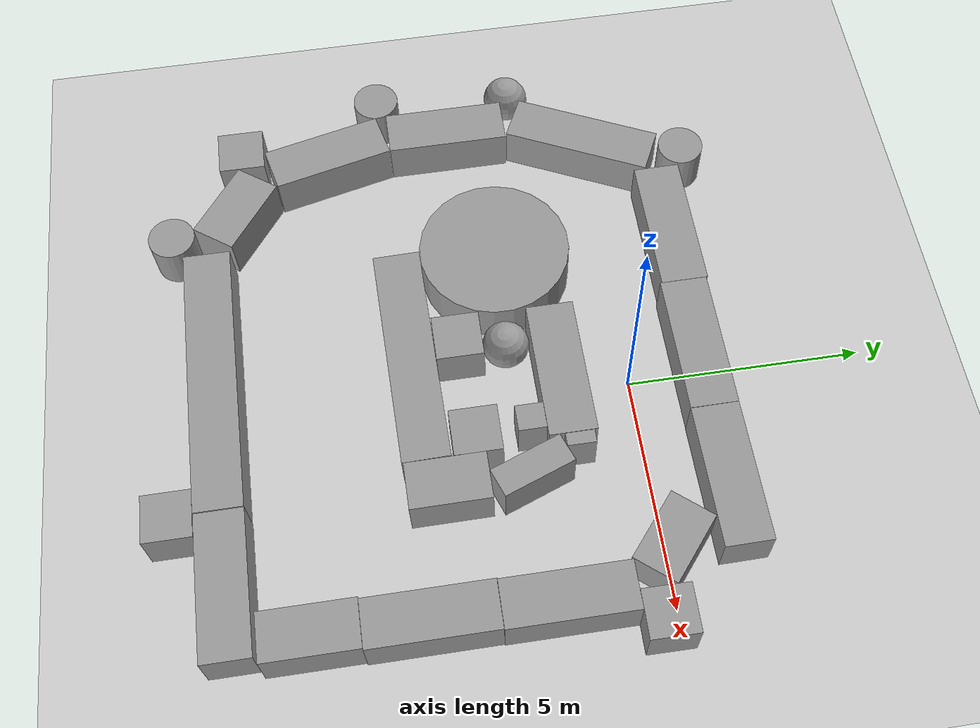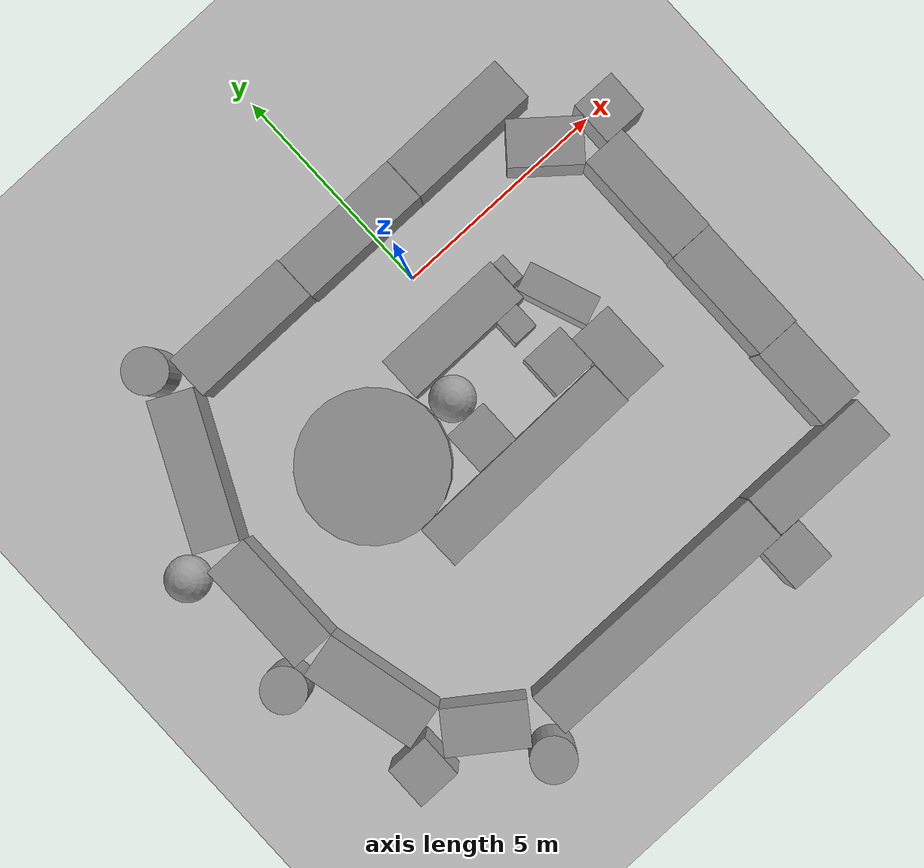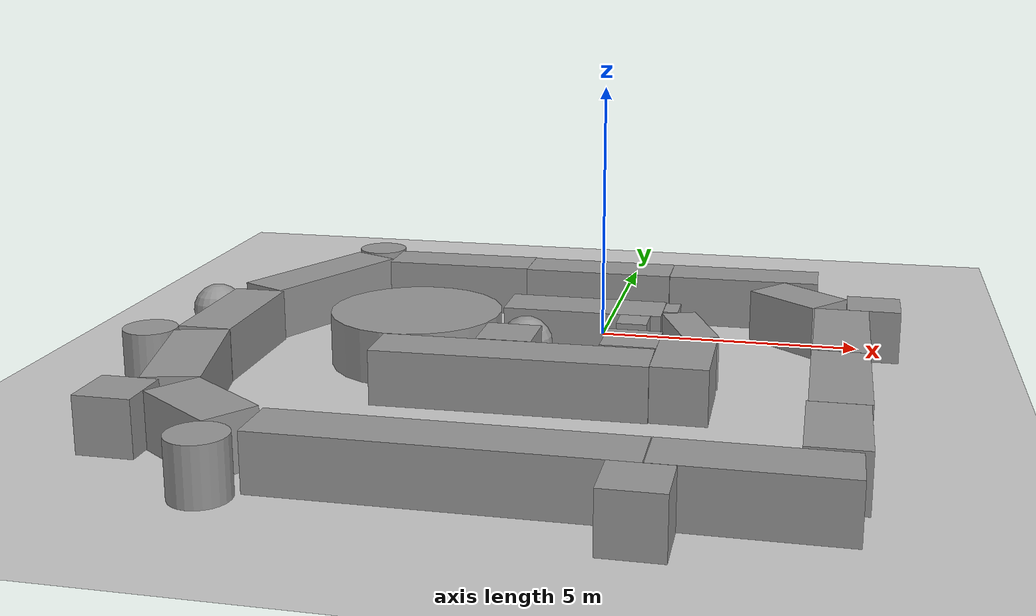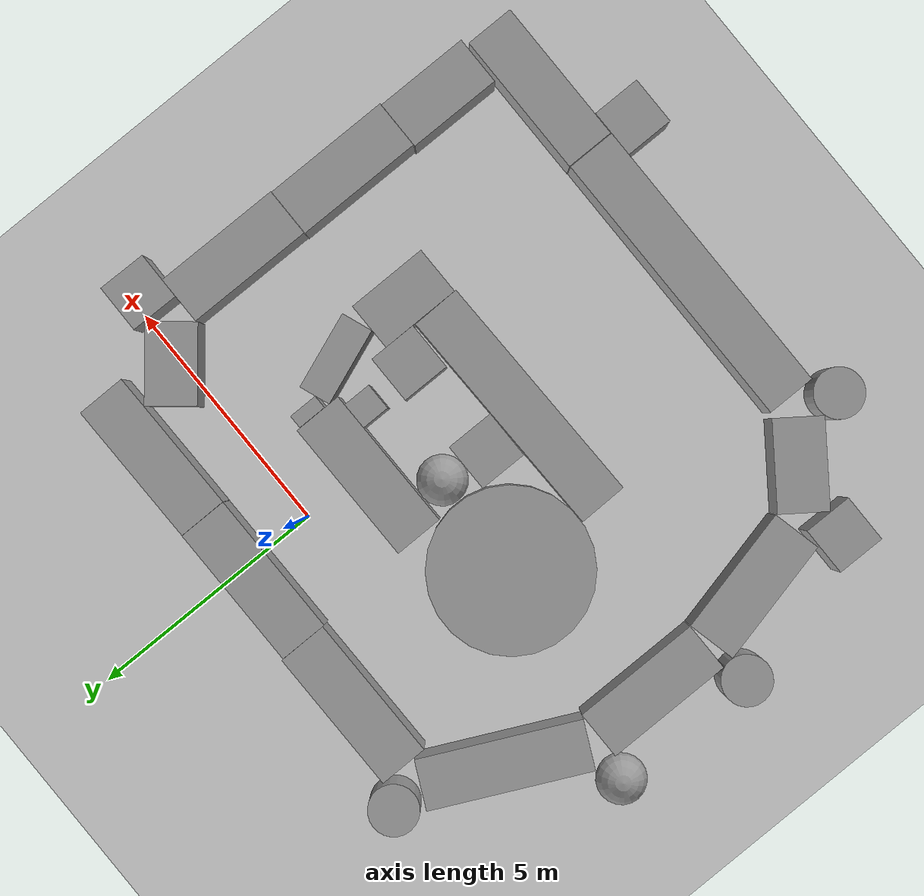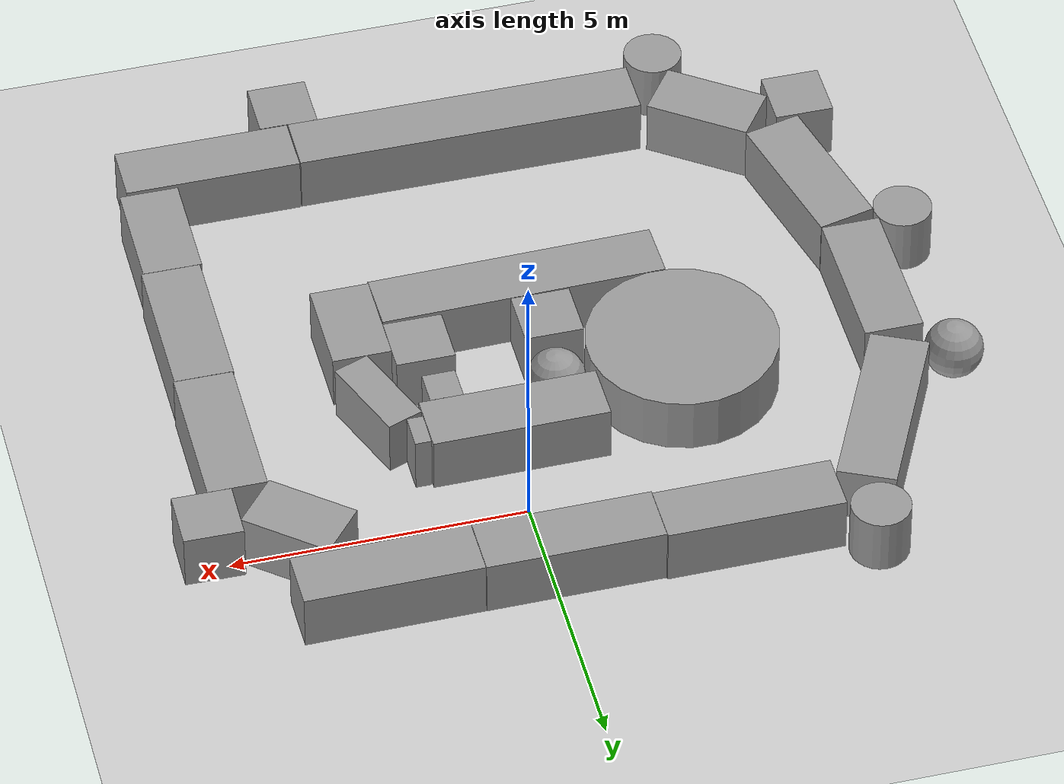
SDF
<sdf version="1.7">
 <world name="default">
  <light name="sun" type="directional">
   <pose>0 0 10 0 -0 0</pose>
   <diffuse>0.8 0.8 0.8 1</diffuse>
   <specular>0.2 0.2 0.2 1</specular>
   <attenuation>
    <range>1000</range>
    <constant>0.9</constant>
    <linear>0.01</linear>
    <quadratic>0.001</quadratic>
   </attenuation>
   <direction>-0.5 0.1 -0.9</direction>
   <spot><inner_angle>0</inner_angle><outer_angle>0</outer_angle><falloff>0</falloff></spot>
  </light>
  <model name="ground_plane">
   <static>1</static>
   <link name="link">
    <collision name="collision">
     <geometry><plane><normal>0 0 1</normal><size>100 100</size></plane></geometry>
     <surface><friction><ode><mu>100</mu><mu2>50</mu2></ode></friction></surface>
    </collision>
    <visual name="visual">
     <cast_shadows>0</cast_shadows>
     <geometry><plane><normal>0 0 1</normal><size>100 100</size></plane></geometry>
     <material>
      <script><uri>file://media/materials/scripts/gazebo.material</uri><name>Gazebo/Grey</name></script>
     </material>
    </visual>
   </link>
  </model>
  <gravity>0 0 -9.8</gravity>
  <magnetic_field>6e-06 2.3e-05 -4.2e-05</magnetic_field>
  <atmosphere type="adiabatic"/>
  <physics type="ode">
   <max_step_size>0.001</max_step_size>
   <real_time_factor>1</real_time_factor>
   <real_time_update_rate>1000</real_time_update_rate>
  </physics>
  <scene><ambient>0.4 0.4 0.4 1</ambient><background>0.7 0.7 0.7 1</background><shadows>1</shadows></scene>
  <spherical_coordinates>
   <surface_model>EARTH_WGS84</surface_model>
   <latitude_deg>0</latitude_deg>
   <longitude_deg>0</longitude_deg>
   <elevation>0</elevation>
   <heading_deg>0</heading_deg>
  </spherical_coordinates>
  <model name="unit_box">
   <pose>-0.124372 -1.44495 0.5 0 -0 0.004829</pose>
   <link name="link">
    <inertial>
     <mass>1</mass>
     <inertia>
      <ixx>0.166667</ixx>
      <ixy>0</ixy>
      <ixz>0</ixz>
      <iyy>0.166667</iyy>
      <iyz>0</iyz>
      <izz>0.166667</izz>
     </inertia>
    </inertial>
    <collision name="collision"><geometry><box><size>2.99679 1 1</size></box></geometry></collision>
    <visual name="visual">
     <geometry><box><size>2.99679 1 1</size></box></geometry>
     <material>
      <script><name>Gazebo/Grey</name><uri>file://media/materials/scripts/gazebo.material</uri></script>
     </material>
    </visual>
   </link>
  </model>
  <model name="unit_box_0">
   <pose>1.95773 -2.35909 0.5 0 0 -1.21042</pose>
   <link name="link">
    <inertial>
     <mass>1</mass>
     <inertia>
      <ixx>0.166667</ixx>
      <ixy>0</ixy>
      <ixz>0</ixz>
      <iyy>0.166667</iyy>
      <iyz>0</iyz>
      <izz>0.166667</izz>
     </inertia>
    </inertial>
    <collision name="collision"><geometry><box><size>1.59879 0.641535 1</size></box></geometry></collision>
    <visual name="visual">
     <geometry><box><size>1.59879 0.641535 1</size></box></geometry>
     <material>
      <script><name>Gazebo/Grey</name><uri>file://media/materials/scripts/gazebo.material</uri></script>
     </material>
    </visual>
   </link>
  </model>
  <model name="unit_box_1">
   <pose>4.67137 -2.08117 0.499914 6.5e-05 -0 -0.002604</pose>
   <link name="link">
    <inertial>
     <mass>1</mass>
     <inertia>
      <ixx>0.166667</ixx>
      <ixy>0</ixy>
      <ixz>0</ixz>
      <iyy>0.166667</iyy>
      <iyz>0</iyz>
      <izz>0.166667</izz>
     </inertia>
    </inertial>
    <collision name="collision"><geometry><box><size>1 2.63405 1</size></box></geometry></collision>
    <visual name="visual">
     <geometry><box><size>1 2.63405 1</size></box></geometry>
     <material>
      <script><name>Gazebo/Grey</name><uri>file://media/materials/scripts/gazebo.material</uri></script>
     </material>
    </visual>
   </link>
  </model>
  <model name="unit_box_2">
   <pose>-5.9755 0.01134 0.499995 -3e-06 -0 -0.448899</pose>
   <link name="link">
    <inertial>
     <mass>1</mass>
     <inertia>
      <ixx>0.166667</ixx>
      <ixy>0</ixy>
      <ixz>0</ixz>
      <iyy>0.166667</iyy>
      <iyz>0</iyz>
      <izz>0.166667</izz>
     </inertia>
    </inertial>
    <collision name="collision"><geometry><box><size>1 3.27343 1</size></box></geometry></collision>
    <visual name="visual">
     <geometry><box><size>1 3.27343 1</size></box></geometry>
     <material>
      <script><name>Gazebo/Grey</name><uri>file://media/materials/scripts/gazebo.material</uri></script>
     </material>
    </visual>
   </link>
  </model>
  <model name="unit_box_clone">
   <pose>-0.29151 1.48613 0.5 0 -0 0.003307</pose>
   <link name="link">
    <inertial>
     <mass>1</mass>
     <inertia>
      <ixx>0.166667</ixx>
      <ixy>0</ixy>
      <ixz>0</ixz>
      <iyy>0.166667</iyy>
      <iyz>0</iyz>
      <izz>0.166667</izz>
     </inertia>
    </inertial>
    <collision name="collision"><geometry><box><size>2.99679 1 1</size></box></geometry></collision>
    <visual name="visual">
     <geometry><box><size>2.99679 1 1</size></box></geometry>
     <material>
      <script><name>Gazebo/Grey</name><uri>file://media/materials/scripts/gazebo.material</uri></script>
     </material>
    </visual>
   </link>
  </model>
  <model name="unit_box_clone_0">
   <pose>2.71039 1.49832 0.499826 -0 -0.000116 0.007487</pose>
   <link name="link">
    <inertial>
     <mass>1</mass>
     <inertia>
      <ixx>0.166667</ixx>
      <ixy>0</ixy>
      <ixz>0</ixz>
      <iyy>0.166667</iyy>
      <iyz>0</iyz>
      <izz>0.166667</izz>
     </inertia>
    </inertial>
    <collision name="collision"><geometry><box><size>2.99679 1 1</size></box></geometry></collision>
    <visual name="visual">
     <geometry><box><size>2.99679 1 1</size></box></geometry>
     <material>
      <script><name>Gazebo/Grey</name><uri>file://media/materials/scripts/gazebo.material</uri></script>
     </material>
    </visual>
   </link>
  </model>
  <model name="unit_box_0_clone">
   <pose>3.84558 0.10203 0.5 0 0 -0.694161</pose>
   <link name="link">
    <inertial>
     <mass>1</mass>
     <inertia>
      <ixx>0.166667</ixx>
      <ixy>0</ixy>
      <ixz>0</ixz>
      <iyy>0.166667</iyy>
      <iyz>0</iyz>
      <izz>0.166667</izz>
     </inertia>
    </inertial>
    <collision name="collision"><geometry><box><size>1.59495 1 1</size></box></geometry></collision>
    <visual name="visual">
     <geometry><box><size>1.59495 1 1</size></box></geometry>
     <material>
      <script><name>Gazebo/Grey</name><uri>file://media/materials/scripts/gazebo.material</uri></script>
     </material>
    </visual>
   </link>
  </model>
  <model name="unit_box_1_clone">
   <pose>4.65008 -4.7189 0.499999 0 2e-06 -0.001201</pose>
   <link name="link">
    <inertial>
     <mass>1</mass>
     <inertia>
      <ixx>0.166667</ixx>
      <ixy>0</ixy>
      <ixz>0</ixz>
      <iyy>0.166667</iyy>
      <iyz>0</iyz>
      <izz>0.166667</izz>
     </inertia>
    </inertial>
    <collision name="collision"><geometry><box><size>1 2.63405 1</size></box></geometry></collision>
    <visual name="visual">
     <geometry><box><size>1 2.63405 1</size></box></geometry>
     <material>
      <script><name>Gazebo/Grey</name><uri>file://media/materials/scripts/gazebo.material</uri></script>
     </material>
    </visual>
   </link>
  </model>
  <model name="unit_box_1_clone_clone">
   <pose>2.0271 -4.05793 0.5 0 -0 0.003096</pose>
   <link name="link">
    <inertial>
     <mass>1</mass>
     <inertia>
      <ixx>0.166667</ixx>
      <ixy>0</ixy>
      <ixz>0</ixz>
      <iyy>0.166667</iyy>
      <iyz>0</iyz>
      <izz>0.166667</izz>
     </inertia>
    </inertial>
    <collision name="collision"><geometry><box><size>1 1.67048 1</size></box></geometry></collision>
    <visual name="visual">
     <geometry><box><size>1 1.67048 1</size></box></geometry>
     <material>
      <script><name>Gazebo/Grey</name><uri>file://media/materials/scripts/gazebo.material</uri></script>
     </material>
    </visual>
   </link>
  </model>
  <model name="unit_box_3">
   <pose>-5.12308 -7.87735 0.49999 0 1e-05 -0.626907</pose>
   <link name="link">
    <inertial>
     <mass>1</mass>
     <inertia>
      <ixx>0.166667</ixx>
      <ixy>0</ixy>
      <ixz>0</ixz>
      <iyy>0.166667</iyy>
      <iyz>0</iyz>
      <izz>0.166667</izz>
     </inertia>
    </inertial>
    <collision name="collision"><geometry><box><size>1.81067 1 1</size></box></geometry></collision>
    <visual name="visual">
     <geometry><box><size>1.81067 1 1</size></box></geometry>
     <material>
      <script><name>Gazebo/Grey</name><uri>file://media/materials/scripts/gazebo.material</uri></script>
     </material>
    </visual>
   </link>
  </model>
  <model name="unit_box_clone_1">
   <pose>3.47569 -8.55019 0.49732 0.000483 0.000993 -6.5e-05</pose>
   <link name="link">
    <inertial>
     <mass>1</mass>
     <inertia>
      <ixx>0.166667</ixx>
      <ixy>0</ixy>
      <ixz>0</ixz>
      <iyy>0.166667</iyy>
      <iyz>0</iyz>
      <izz>0.166667</izz>
     </inertia>
    </inertial>
    <collision name="collision"><geometry><box><size>2.99679 1 1</size></box></geometry></collision>
    <visual name="visual">
     <geometry><box><size>2.99679 1 1</size></box></geometry>
     <material>
      <script><name>Gazebo/Grey</name><uri>file://media/materials/scripts/gazebo.material</uri></script>
     </material>
    </visual>
   </link>
  </model>
  <model name="unit_box_clone_2">
   <pose>-1.01855 -8.55844 0.495311 0 -0.001573 0.000108</pose>
   <link name="link">
    <inertial>
     <mass>1</mass>
     <inertia>
      <ixx>0.166667</ixx>
      <ixy>0</ixy>
      <ixz>0</ixz>
      <iyy>0.166667</iyy>
      <iyz>0</iyz>
      <izz>0.166667</izz>
     </inertia>
    </inertial>
    <collision name="collision"><geometry><box><size>5.96262 1 1</size></box></geometry></collision>
    <visual name="visual">
     <geometry><box><size>5.96262 1 1</size></box></geometry>
     <material>
      <script><name>Gazebo/Grey</name><uri>file://media/materials/scripts/gazebo.material</uri></script>
     </material>
    </visual>
   </link>
  </model>
  <model name="unit_box_clone_2_clone">
   <pose>-0.914491 -4.47077 0.499941 1e-06 -0 0.017964</pose>
   <link name="link">
    <inertial>
     <mass>1</mass>
     <inertia>
      <ixx>0.166667</ixx>
      <ixy>0</ixy>
      <ixz>0</ixz>
      <iyy>0.166667</iyy>
      <iyz>0</iyz>
      <izz>0.166667</izz>
     </inertia>
    </inertial>
    <collision name="collision"><geometry><box><size>4.8707 1 1</size></box></geometry></collision>
    <visual name="visual">
     <geometry><box><size>4.8707 1 1</size></box></geometry>
     <material>
      <script><name>Gazebo/Grey</name><uri>file://media/materials/scripts/gazebo.material</uri></script>
     </material>
    </visual>
   </link>
  </model>
  <model name="unit_cylinder">
   <pose>-3.21355 -2.39177 0.499987 8e-06 -6e-06 -0.143871</pose>
   <link name="link">
    <inertial>
     <mass>1</mass>
     <inertia><ixx>0.145833</ixx><ixy>0</ixy><ixz>0</ixz><iyy>0.145833</iyy><iyz>0</iyz><izz>0.125</izz></inertia>
    </inertial>
    <collision name="collision">
     <geometry><cylinder><radius>1.61993</radius><length>1</length></cylinder></geometry>
    </collision>
    <visual name="visual">
     <geometry><cylinder><radius>1.61993</radius><length>1</length></cylinder></geometry>
     <material>
      <script><name>Gazebo/Grey</name><uri>file://media/materials/scripts/gazebo.material</uri></script>
     </material>
    </visual>
   </link>
  </model>
  <model name="unit_box_1_clone_clone_clone">
   <pose>4.61275 -7.00726 0.499995 -0 9e-06 -0.001985</pose>
   <link name="link">
    <inertial>
     <mass>1</mass>
     <inertia>
      <ixx>0.166667</ixx>
      <ixy>0</ixy>
      <ixz>0</ixz>
      <iyy>0.166667</iyy>
      <iyz>0</iyz>
      <izz>0.166667</izz>
     </inertia>
    </inertial>
    <collision name="collision"><geometry><box><size>1 1.93774 1</size></box></geometry></collision>
    <visual name="visual">
     <geometry><box><size>1 1.93774 1</size></box></geometry>
     <material>
      <script><name>Gazebo/Grey</name><uri>file://media/materials/scripts/gazebo.material</uri></script>
     </material>
    </visual>
   </link>
  </model>
  <model name="unit_box_1_clone_clone_0">
   <pose>-6.33915 -5.74834 0.5 0 -0 0.231492</pose>
   <link name="link">
    <inertial>
     <mass>1</mass>
     <inertia>
      <ixx>0.166667</ixx>
      <ixy>0</ixy>
      <ixz>0</ixz>
      <iyy>0.166667</iyy>
      <iyz>0</iyz>
      <izz>0.166667</izz>
     </inertia>
    </inertial>
    <collision name="collision"><geometry><box><size>1 2.63405 1</size></box></geometry></collision>
    <visual name="visual">
     <geometry><box><size>1 2.63405 1</size></box></geometry>
     <material>
      <script><name>Gazebo/Grey</name><uri>file://media/materials/scripts/gazebo.material</uri></script>
     </material>
    </visual>
   </link>
  </model>
  <model name="unit_box_1_clone_clone_1">
   <pose>-6.65738 -3.02372 0.499999 0 2e-06 0.000765</pose>
   <link name="link">
    <inertial>
     <mass>1</mass>
     <inertia>
      <ixx>0.166667</ixx>
      <ixy>0</ixy>
      <ixz>0</ixz>
      <iyy>0.166667</iyy>
      <iyz>0</iyz>
      <izz>0.166667</izz>
     </inertia>
    </inertial>
    <collision name="collision"><geometry><box><size>1 2.63405 1</size></box></geometry></collision>
    <visual name="visual">
     <geometry><box><size>1 2.63405 1</size></box></geometry>
     <material>
      <script><name>Gazebo/Grey</name><uri>file://media/materials/scripts/gazebo.material</uri></script>
     </material>
    </visual>
   </link>
  </model>
  <model name="unit_box_clone_clone">
   <pose>-3.29053 1.51015 0.499996 5e-06 1e-06 0.005382</pose>
   <link name="link">
    <inertial>
     <mass>1</mass>
     <inertia>
      <ixx>0.166667</ixx>
      <ixy>0</ixy>
      <ixz>0</ixz>
      <iyy>0.166667</iyy>
      <iyz>0</iyz>
      <izz>0.166667</izz>
     </inertia>
    </inertial>
    <collision name="collision"><geometry><box><size>2.99679 1 1</size></box></geometry></collision>
    <visual name="visual">
     <geometry><box><size>2.99679 1 1</size></box></geometry>
     <material>
      <script><name>Gazebo/Grey</name><uri>file://media/materials/scripts/gazebo.material</uri></script>
     </material>
    </visual>
   </link>
  </model>
  <model name="unit_sphere">
   <pose>-7.64793 -1.50316 0.5 -0.004091 -0.029859 0.030066</pose>
   <link name="link">
    <inertial>
     <mass>1</mass>
     <inertia><ixx>0.1</ixx><ixy>0</ixy><ixz>0</ixz><iyy>0.1</iyy><iyz>0</iyz><izz>0.1</izz></inertia>
    </inertial>
    <collision name="collision"><geometry><sphere><radius>0.5</radius></sphere></geometry></collision>
    <visual name="visual">
     <geometry><sphere><radius>0.5</radius></sphere></geometry>
     <material>
      <script><name>Gazebo/Grey</name><uri>file://media/materials/scripts/gazebo.material</uri></script>
     </material>
    </visual>
   </link>
  </model>
  <model name="unit_cylinder_0">
   <pose>-5.31335 2.16958 0.499992 -3e-06 3e-06 0</pose>
   <link name="link">
    <inertial>
     <mass>1</mass>
     <inertia><ixx>0.145833</ixx><ixy>0</ixy><ixz>0</ixz><iyy>0.145833</iyy><iyz>0</iyz><izz>0.125</izz></inertia>
    </inertial>
    <collision name="collision">
     <geometry><cylinder><radius>0.5</radius><length>1</length></cylinder></geometry>
    </collision>
    <visual name="visual">
     <geometry><cylinder><radius>0.5</radius><length>1</length></cylinder></geometry>
     <material>
      <script><name>Gazebo/Grey</name><uri>file://media/materials/scripts/gazebo.material</uri></script>
     </material>
    </visual>
   </link>
  </model>
  <model name="unit_box_4">
   <pose>5.2759 -0.266327 0.5 0 0 -0.010381</pose>
   <link name="link">
    <inertial>
     <mass>1</mass>
     <inertia>
      <ixx>0.166667</ixx>
      <ixy>0</ixy>
      <ixz>0</ixz>
      <iyy>0.166667</iyy>
      <iyz>0</iyz>
      <izz>0.166667</izz>
     </inertia>
    </inertial>
    <collision name="collision"><geometry><box><size>1 1 1</size></box></geometry></collision>
    <visual name="visual">
     <geometry><box><size>1 1 1</size></box></geometry>
     <material>
      <script><name>Gazebo/Grey</name><uri>file://media/materials/scripts/gazebo.material</uri></script>
     </material>
    </visual>
   </link>
  </model>
  <model name="unit_box_5">
   <pose>1.94441 -9.55873 0.50006 0.000101 -6.3e-05 -8.8e-05</pose>
   <link name="link">
    <inertial>
     <mass>1</mass>
     <inertia>
      <ixx>0.166667</ixx>
      <ixy>0</ixy>
      <ixz>0</ixz>
      <iyy>0.166667</iyy>
      <iyz>0</iyz>
      <izz>0.166667</izz>
     </inertia>
    </inertial>
    <collision name="collision"><geometry><box><size>1 1 1</size></box></geometry></collision>
    <visual name="visual">
     <geometry><box><size>1 1 1</size></box></geometry>
     <material>
      <script><name>Gazebo/Grey</name><uri>file://media/materials/scripts/gazebo.material</uri></script>
     </material>
    </visual>
   </link>
  </model>
  <model name="unit_cylinder_1">
   <pose>-4.53183 -9.29042 0.499991 -0 -0 -0.010298</pose>
   <link name="link">
    <inertial>
     <mass>1</mass>
     <inertia><ixx>0.145833</ixx><ixy>0</ixy><ixz>0</ixz><iyy>0.145833</iyy><iyz>0</iyz><izz>0.125</izz></inertia>
    </inertial>
    <collision name="collision">
     <geometry><cylinder><radius>0.5</radius><length>1</length></cylinder></geometry>
    </collision>
    <visual name="visual">
     <geometry><cylinder><radius>0.5</radius><length>1</length></cylinder></geometry>
     <material>
      <script><name>Gazebo/Grey</name><uri>file://media/materials/scripts/gazebo.material</uri></script>
     </material>
    </visual>
   </link>
  </model>
  <model name="unit_box_6">
   <pose>-6.66214 -7.67474 0.499995 -0 1e-05 -0.004284</pose>
   <link name="link">
    <inertial>
     <mass>1</mass>
     <inertia>
      <ixx>0.166667</ixx>
      <ixy>0</ixy>
      <ixz>0</ixz>
      <iyy>0.166667</iyy>
      <iyz>0</iyz>
      <izz>0.166667</izz>
     </inertia>
    </inertial>
    <collision name="collision"><geometry><box><size>1 1 1</size></box></geometry></collision>
    <visual name="visual">
     <geometry><box><size>1 1 1</size></box></geometry>
     <material>
      <script><name>Gazebo/Grey</name><uri>file://media/materials/scripts/gazebo.material</uri></script>
     </material>
    </visual>
   </link>
  </model>
  <model name="unit_cylinder_2">
   <pose>-7.62516 -4.52723 0.499995 0 -0 0.036061</pose>
   <link name="link">
    <inertial>
     <mass>1</mass>
     <inertia><ixx>0.145833</ixx><ixy>0</ixy><ixz>0</ixz><iyy>0.145833</iyy><iyz>0</iyz><izz>0.125</izz></inertia>
    </inertial>
    <collision name="collision">
     <geometry><cylinder><radius>0.5</radius><length>1</length></cylinder></geometry>
    </collision>
    <visual name="visual">
     <geometry><cylinder><radius>0.5</radius><length>1</length></cylinder></geometry>
     <material>
      <script><name>Gazebo/Grey</name><uri>file://media/materials/scripts/gazebo.material</uri></script>
     </material>
    </visual>
   </link>
  </model>
  <model name="unit_box_7">
   <pose>1.02435 -3.37731 0.499995 0 1e-05 -0.001003</pose>
   <link name="link">
    <inertial>
     <mass>1</mass>
     <inertia>
      <ixx>0.166667</ixx>
      <ixy>0</ixy>
      <ixz>0</ixz>
      <iyy>0.166667</iyy>
      <iyz>0</iyz>
      <izz>0.166667</izz>
     </inertia>
    </inertial>
    <collision name="collision"><geometry><box><size>1 1 1</size></box></geometry></collision>
    <visual name="visual">
     <geometry><box><size>1 1 1</size></box></geometry>
     <material>
      <script><name>Gazebo/Grey</name><uri>file://media/materials/scripts/gazebo.material</uri></script>
     </material>
    </visual>
   </link>
  </model>
  <model name="unit_box_8">
   <pose>-1.17962 -3.45837 0.499995 1e-05 -0 -0.000457</pose>
   <link name="link">
    <inertial>
     <mass>1</mass>
     <inertia>
      <ixx>0.166667</ixx>
      <ixy>0</ixy>
      <ixz>0</ixz>
      <iyy>0.166667</iyy>
      <iyz>0</iyz>
      <izz>0.166667</izz>
     </inertia>
    </inertial>
    <collision name="collision"><geometry><box><size>1 1 1</size></box></geometry></collision>
    <visual name="visual">
     <geometry><box><size>1 1 1</size></box></geometry>
     <material>
      <script><name>Gazebo/Grey</name><uri>file://media/materials/scripts/gazebo.material</uri></script>
     </material>
    </visual>
   </link>
  </model>
  <model name="unit_box_9">
   <pose>0.902094 -2.23535 0.5 0 -0 0.00345</pose>
   <link name="link">
    <inertial>
     <mass>1</mass>
     <inertia>
      <ixx>0.166667</ixx>
      <ixy>0</ixy>
      <ixz>0</ixz>
      <iyy>0.166667</iyy>
      <iyz>0</iyz>
      <izz>0.166667</izz>
     </inertia>
    </inertial>
    <collision name="collision"><geometry><box><size>0.561961 0.587921 1</size></box></geometry></collision>
    <visual name="visual">
     <geometry><box><size>0.561961 0.587921 1</size></box></geometry>
     <material>
      <script><name>Gazebo/Grey</name><uri>file://media/materials/scripts/gazebo.material</uri></script>
     </material>
    </visual>
   </link>
  </model>
  <model name="unit_sphere_0">
   <pose>-1.08115 -2.45824 0.5 0.031905 0.021689 0.044126</pose>
   <link name="link">
    <inertial>
     <mass>1</mass>
     <inertia><ixx>0.1</ixx><ixy>0</ixy><ixz>0</ixz><iyy>0.1</iyy><iyz>0</iyz><izz>0.1</izz></inertia>
    </inertial>
    <collision name="collision"><geometry><sphere><radius>0.5</radius></sphere></geometry></collision>
    <visual name="visual">
     <geometry><sphere><radius>0.5</radius></sphere></geometry>
     <material>
      <script><name>Gazebo/Grey</name><uri>file://media/materials/scripts/gazebo.material</uri></script>
     </material>
    </visual>
   </link>
  </model>
  <model name="unit_box_10">
   <pose>1.51923 -1.31375 0.500001 2e-06 -0 4.2e-05</pose>
   <link name="link">
    <inertial>
     <mass>1</mass>
     <inertia>
      <ixx>0.166667</ixx>
      <ixy>0</ixy>
      <ixz>0</ixz>
      <iyy>0.166667</iyy>
      <iyz>0</iyz>
      <izz>0.166667</izz>
     </inertia>
    </inertial>
    <collision name="collision"><geometry><box><size>0.276909 0.599482 1</size></box></geometry></collision>
    <visual name="visual">
     <geometry><box><size>0.276909 0.599482 1</size></box></geometry>
     <material>
      <script><name>Gazebo/Grey</name><uri>file://media/materials/scripts/gazebo.material</uri></script>
     </material>
    </visual>
   </link>
  </model>
 </world>
</sdf>
